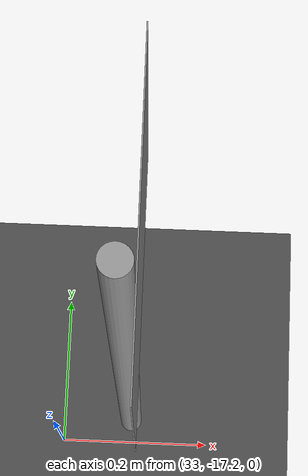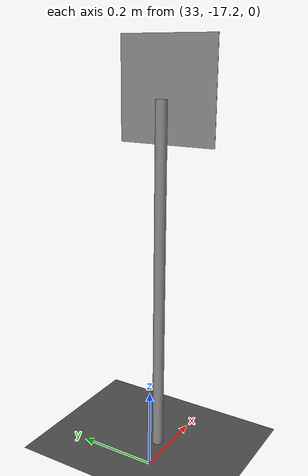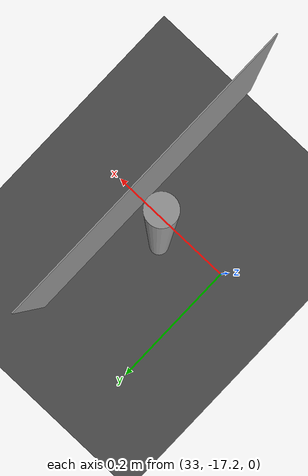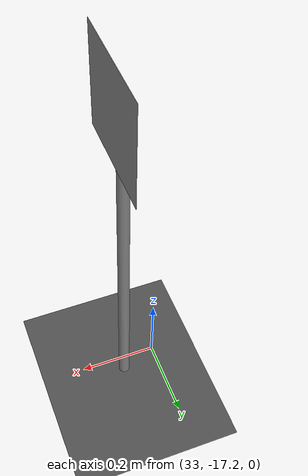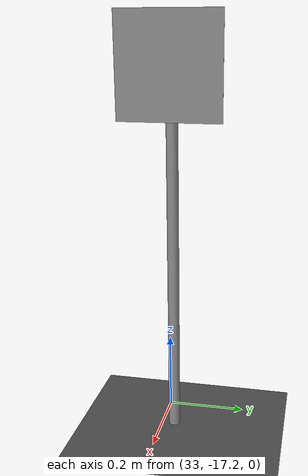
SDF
<sdf version="1.7">
 <world name="default">
  <model name="ground_plane">
   <static>1</static>
   <link name="link">
    <collision name="collision">
     <geometry><plane><normal>0 0 1</normal><size>100 100</size></plane></geometry>
     <surface>
      <contact><collide_bitmask>65535</collide_bitmask></contact>
      <friction><ode><mu>100</mu><mu2>50</mu2></ode></friction>
     </surface>
    </collision>
    <visual name="visual">
     <cast_shadows>0</cast_shadows>
     <geometry><plane><normal>0 0 1</normal><size>100 100</size></plane></geometry>
     <material>
      <script><uri>file://media/materials/scripts/gazebo.material</uri><name>Gazebo/DarkGrey</name></script>
     </material>
    </visual>
   </link>
  </model>
  <model name="unit_cylinder_clone_11">
   <pose>33.0941 -17.1688 0.449175 -2e-06 4e-06 6e-06</pose>
   <link name="link">
    <inertial>
     <mass>1</mass>
     <inertia><ixx>0.145833</ixx><ixy>0</ixy><ixz>0</ixz><iyy>0.145833</iyy><iyz>0</iyz><izz>0.125</izz></inertia>
    </inertial>
    <collision name="collision">
     <geometry><cylinder><radius>0.0142338</radius><length>0.898369</length></cylinder></geometry>
    </collision>
    <visual name="visual">
     <geometry><cylinder><radius>0.0142338</radius><length>0.898369</length></cylinder></geometry>
     <material>
      <script><name>Gazebo/Grey</name><uri>file://media/materials/scripts/gazebo.material</uri></script>
     </material>
    </visual>
   </link>
  </model>
  <model name="soladon_0">
   <link name="link_clone">
    <inertial>
     <mass>0.0435615</mass>
     <inertia>
      <ixx>0.00363012</ixx>
      <ixy>0</ixy>
      <ixz>0</ixz>
      <iyy>0.00726024</iyy>
      <iyz>0</iyz>
      <izz>0.00363012</izz>
     </inertia>
    </inertial>
    <pose>-0.747635 1.04083 0.781019 0 -0 0</pose>
    <gravity>0</gravity>
    <visual name="visual">
     <geometry><box><size>0.25 0.000308 0.25</size></box></geometry>
     <material>
      <script>
       <uri>model://soladon/materials/scripts/soladon.material</uri>
       <uri>model://soladon/materials/textures/soladon.png</uri>
       <name>RepeatedTexture14</name>
      </script>
      <shader type="pixel"><normal_map>__default__</normal_map></shader>
      <ambient>0 0 0 1</ambient>
      <diffuse>0.7 0.7 0.7 1</diffuse>
      <specular>0.01 0.01 0.01 1</specular>
      <emissive>0 0 0 1</emissive>
      <lighting>0</lighting>
     </material>
     <transparency>1</transparency>
    </visual>
    <collision name="collision">
     <geometry><box><size>0.25 0.0001 0.25</size></box></geometry>
     <surface>
      <friction>
       <ode><mu>1</mu><mu2>1</mu2><fdir1>0 0 0</fdir1><slip1>0</slip1><slip2>0</slip2></ode>
       <torsional>
        <coefficient>1</coefficient>
        <patch_radius>0</patch_radius>
        <surface_radius>0</surface_radius>
        <use_patch_radius>1</use_patch_radius>
        <ode><slip>0</slip></ode>
       </torsional>
      </friction>
      <bounce><restitution_coefficient>0</restitution_coefficient><threshold>1e+06</threshold></bounce>
      <contact>
       <collide_without_contact>0</collide_without_contact>
       <collide_without_contact_bitmask>1</collide_without_contact_bitmask>
       <collide_bitmask>1</collide_bitmask>
       <ode>
        <soft_cfm>0</soft_cfm>
        <soft_erp>0.2</soft_erp>
        <kp>1e+13</kp>
        <kd>1</kd>
        <max_vel>0.01</max_vel>
        <min_depth>0</min_depth>
       </ode>
       <bullet>
        <split_impulse>1</split_impulse>
        <split_impulse_penetration_threshold>-0.01</split_impulse_penetration_threshold>
        <soft_cfm>0</soft_cfm>
        <soft_erp>0.2</soft_erp>
        <kp>1e+13</kp>
        <kd>1</kd>
       </bullet>
      </contact>
     </surface>
    </collision>
   </link>
   <static>1</static>
   <pose>29.7515 -20.0349 0.15646 0 -0 1.5708</pose>
  </model>
  <model name="square_clone_2_clone">
   <link name="link">
    <inertial>
     <mass>1</mass>
     <inertia>
      <ixx>0.166667</ixx>
      <ixy>0</ixy>
      <ixz>0</ixz>
      <iyy>0.166667</iyy>
      <iyz>0</iyz>
      <izz>0.166667</izz>
     </inertia>
    </inertial>
    <gravity>0</gravity>
    <visual name="visual">
     <geometry><box><size>0.250163 0.000931 0.247776</size></box></geometry>
     <material>
      <script><name>Gazebo/Grey</name><uri>file://media/materials/scripts/gazebo.material</uri></script>
      <shader type="pixel"><normal_map>__default__</normal_map></shader>
     </material>
    </visual>
    <collision name="collision">
     <geometry><box><size>0.250163 0.000931 0.247776</size></box></geometry>
     <surface>
      <friction>
       <ode><mu>1</mu><mu2>1</mu2><fdir1>0 0 0</fdir1><slip1>0</slip1><slip2>0</slip2></ode>
       <torsional>
        <coefficient>1</coefficient>
        <patch_radius>0</patch_radius>
        <surface_radius>0</surface_radius>
        <use_patch_radius>1</use_patch_radius>
        <ode><slip>0</slip></ode>
       </torsional>
      </friction>
      <bounce><restitution_coefficient>0</restitution_coefficient><threshold>1e+06</threshold></bounce>
      <contact>
       <collide_without_contact>0</collide_without_contact>
       <collide_without_contact_bitmask>1</collide_without_contact_bitmask>
       <collide_bitmask>1</collide_bitmask>
       <ode>
        <soft_cfm>0</soft_cfm>
        <soft_erp>0.2</soft_erp>
        <kp>1e+13</kp>
        <kd>1</kd>
        <max_vel>0.01</max_vel>
        <min_depth>0</min_depth>
       </ode>
       <bullet>
        <split_impulse>1</split_impulse>
        <split_impulse_penetration_threshold>-0.01</split_impulse_penetration_threshold>
        <soft_cfm>0</soft_cfm>
        <soft_erp>0.2</soft_erp>
        <kp>1e+13</kp>
        <kd>1</kd>
       </bullet>
      </contact>
     </surface>
    </collision>
   </link>
   <static>1</static>
   <pose>33.1132 -17.1722 0.917199 0 -0 1.5708</pose>
  </model>
 </world>
</sdf>
